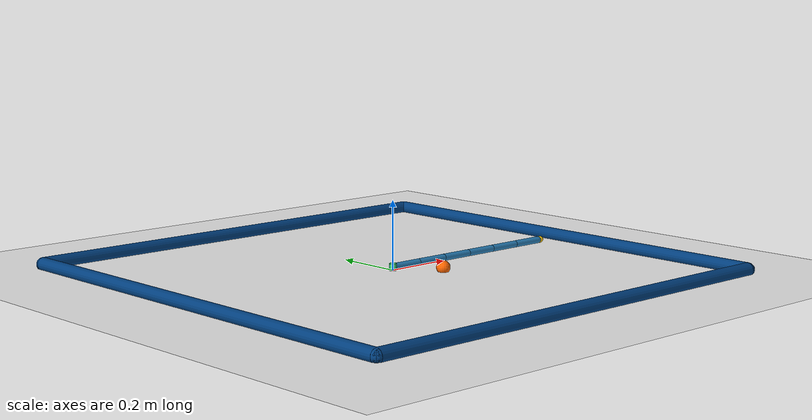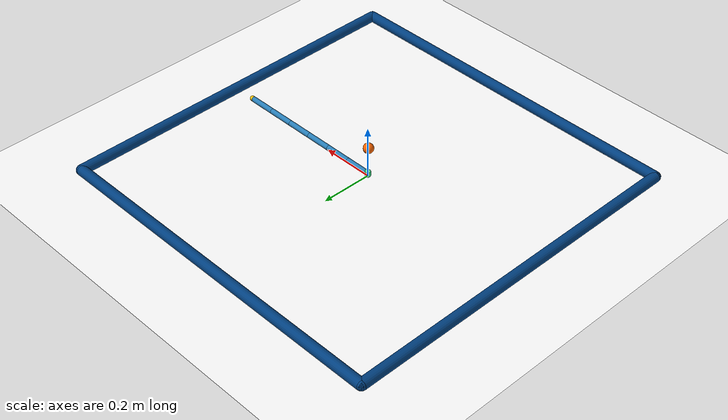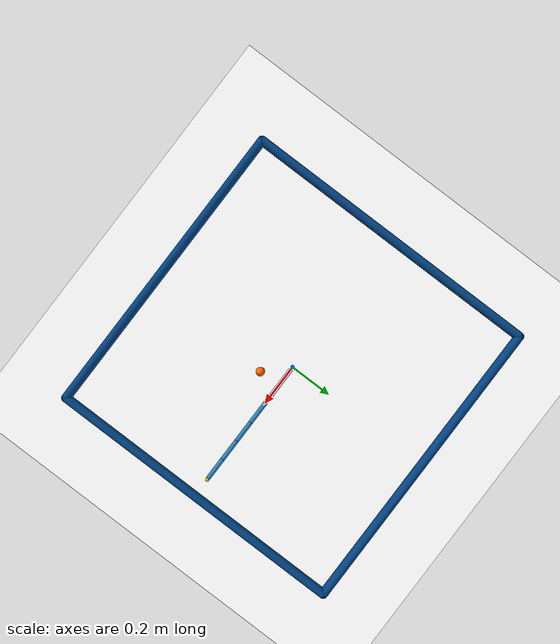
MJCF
<mujoco model="reacher6dof">
	<compiler angle="radian" inertiafromgeom="true"/>
	<default>
		<joint armature="1" damping="1" limited="true"/>
		<geom contype="0" friction="1 0.1 0.1" rgba="0.7 0.7 0 1"/>
	</default>
	<option gravity="0 0 -9.81" integrator="RK4" timestep="0.01"/>
	<worldbody>
		<camera name="overhead" zaxis="0 0 -1" pos="0 0 0"/>
		<!-- Arena -->
		<geom conaffinity="0" contype="0" name="ground" pos="0 0 0" rgba="1. 1. 1. 1" size="1 1 10" type="plane"/>
		<geom conaffinity="0" fromto="-.7 -.7 .01 .7 -.7 .01" name="sideS" rgba="0 0.25 0.5 1" size=".02" type="capsule"/>
		<geom conaffinity="0" fromto=" .7 -.7 .01 .7  .7 .01" name="sideE" rgba="0 0.25 0.5 1" size=".02" type="capsule"/>
		<geom conaffinity="0" fromto="-.7  .7 .01 .7  .7 .01" name="sideN" rgba="0 0.25 0.5 1" size=".02" type="capsule"/>
		<geom conaffinity="0" fromto="-.7 -.7 .01 -.7 .7 .01" name="sideW" rgba="0 0.25 0.5 1" size=".02" type="capsule"/>
		<!-- Arm -->
		<geom conaffinity="0" contype="0" fromto="0 0 0 0 0 0.02" name="root" rgba="0.1796875 0.796875 0.44140625 1" size=".011" type="cylinder"/>
		<body name="body0" pos="0 0 .01">
			<geom fromto="0 0 0 0.1 0 0" name="link0" rgba="0.16015625 0.5 0.72265625 1" size=".01" type="capsule"/>
			<joint axis="0 0 1" limited="false" name="joint0" pos="0 0 0" type="hinge"/>
			<body name="body1" pos="0.1 0 0">
				<joint axis="0 0 1" limited="true" name="joint1" pos="0 0 0" range="-0.8 0.8" type="hinge"/>
				<geom fromto="0 0 0 0.1 0 0" name="link1" rgba="0.16015625 0.5 0.72265625 1" size=".01" type="capsule"/>
				<body name="body2" pos="0.1 0 0">
					<joint axis="0 0 1" limited="true" name="joint2" pos="0 0 0" range="-0.9 0.9" type="hinge"/>
					<geom fromto="0 0 0 0.1 0 0" name="link2" rgba="0.16015625 0.5 0.72265625 1" size=".01" type="capsule"/>
					<body name="body3" pos="0.1 0 0">
						<joint axis="0 0 1" limited="true" name="joint3" pos="0 0 0" range="-1. 1." type="hinge"/>
						<geom fromto="0 0 0 0.1 0 0" name="link3" rgba="0.16015625 0.5 0.72265625 1" size=".01" type="capsule"/>
						<body name="body4" pos="0.1 0 0">
							<joint axis="0 0 1" limited="true" name="joint4" pos="0 0 0" range="-1.2 1.2" type="hinge"/>
							<geom fromto="0 0 0 0.1 0 0" name="link4" rgba="0.16015625 0.5 0.72265625 1" size=".01" type="capsule"/>
							<body name="body5" pos="0.1 0 0">
								<joint axis="0 0 1" limited="true" name="joint5" pos="0 0 0" range="-1.4 1.4" type="hinge"/>
								<geom fromto="0 0 0 0.1 0 0" name="link5" rgba="0.16015625 0.5 0.72265625 1" size=".01" type="capsule"/>
								<body name="fingertip" pos="0.11 0 0">
									<geom contype="0" name="fingertip" pos="0 0 0" rgba="0.94140625 0.765625 0.05859375 1" size=".01" type="sphere"/>
								</body>
							</body>
						</body>
					</body>
				</body>
			</body>
		</body>
		<!-- Target -->
		<body name="target" pos=".1 -.1 .01">
			<joint armature="0" axis="1 0 0" damping="0" limited="true" name="target_x" pos="0 0 0" range="-.67 .67" ref=".1" stiffness="0" type="slide"/>
			<joint armature="0" axis="0 1 0" damping="0" limited="true" name="target_y" pos="0 0 0" range="-.67 .67" ref="-.1" stiffness="0" type="slide"/>
			<geom conaffinity="0" contype="0" name="target" pos="0 0 0" rgba="1. 0.4 0. 1" size=".02" type="sphere"/>
		</body>
	</worldbody>
	<actuator>
		<motor ctrllimited="true" ctrlrange="-.5 .5" gear="200.0" joint="joint0"/>
		<motor ctrllimited="true" ctrlrange="-.5 .5" gear="200.0" joint="joint1"/>
		<motor ctrllimited="true" ctrlrange="-.5 .5" gear="200.0" joint="joint2"/>
		<motor ctrllimited="true" ctrlrange="-.5 .5" gear="200.0" joint="joint3"/>
		<motor ctrllimited="true" ctrlrange="-.5 .5" gear="200.0" joint="joint4"/>
		<motor ctrllimited="true" ctrlrange="-.5 .5" gear="200.0" joint="joint5"/>
	</actuator>
</mujoco>
